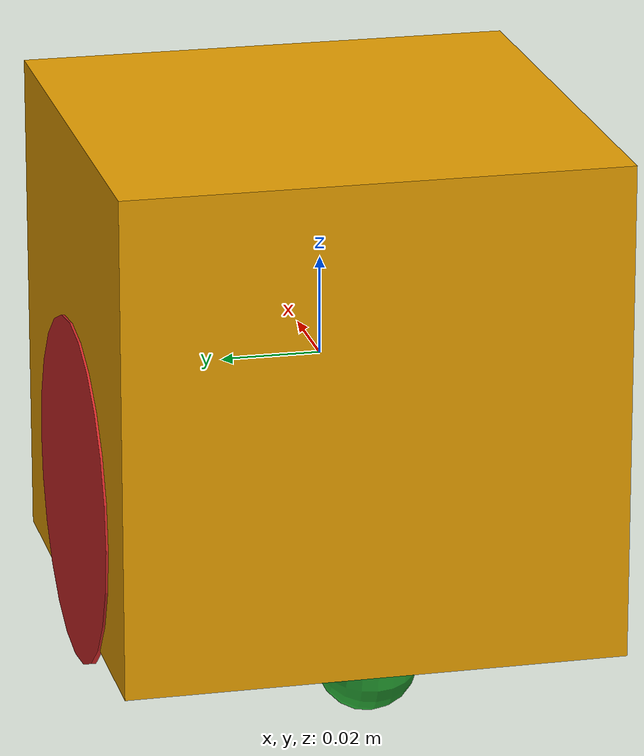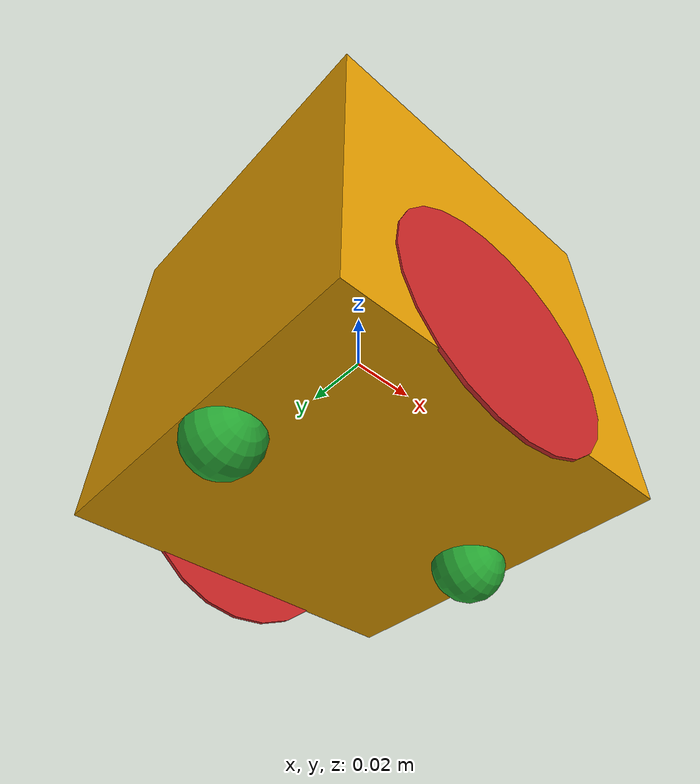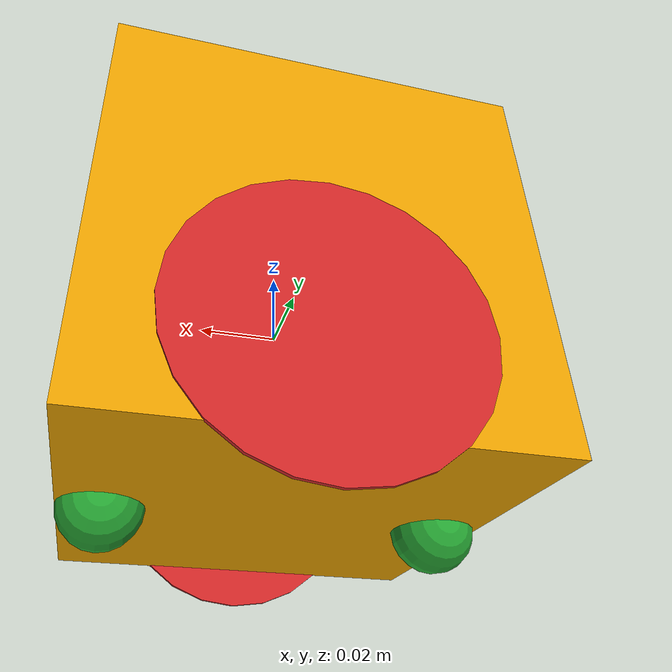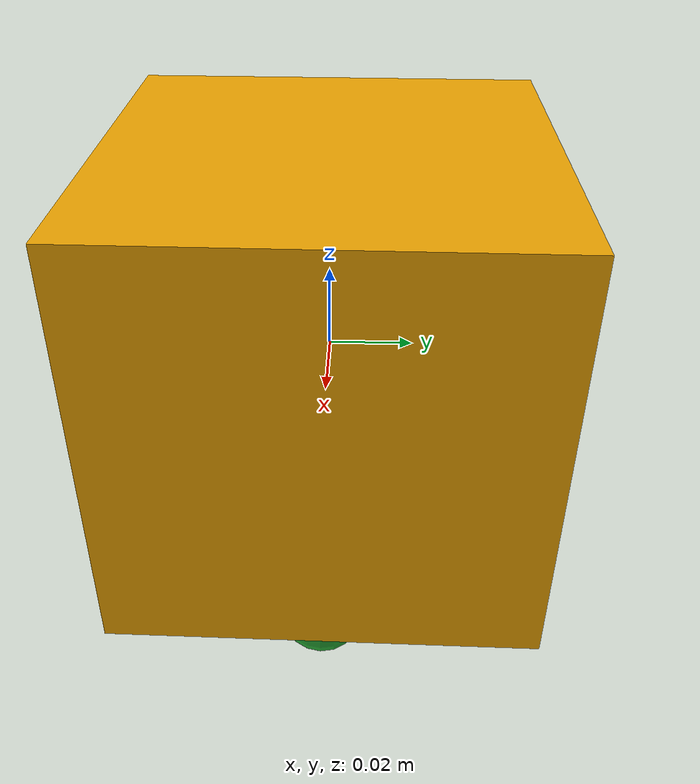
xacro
<?xml version="1.0"?>
<robot xmlns:xacro="http://www.ros.org/wiki/xacro" name="box_bot">

<xacro:property name="robot_name" value="$(arg robot_name)"/>

<xacro:include filename="$(find box_bot_description)/urdf/box_bot.gazebo.xacro" />

<xacro:gazebo_elements />

<!-- XACRO: Properties -->
<xacro:property name="body_width" value="0.1"/>
<xacro:property name="body_length" value="0.1"/>
<xacro:property name="body_height" value="0.1"/>
<xacro:property name="wheel_length" value="0.001"/>
<xacro:property name="wheel_radius" value="0.035"/>

<!-- Body -->
  <link name="chassis">
    <visual>
      <geometry>
        <box size="${body_width} ${body_length} ${body_height}"/>
      </geometry>
    </visual>

    <collision>
      <geometry>
        <box size="${body_width} ${body_length} ${body_height}"/>
      </geometry>
    </collision>

    <inertial>
      <mass value="0.5"/>
      <origin rpy="0 0 0" xyz="0 0 0"/>
      <inertia ixx="0.0008333333333333335" ixy="0" ixz="0" iyy="0.0008333333333333335" iyz="0" izz="0.0008333333333333335"/>
    </inertial>
  </link>

  <!-- XACRO: Wheel macro -->
  <xacro:macro name="wheel" params="wheel_name">
    <link name="${wheel_name}">
        <visual>
            <origin rpy="0 1.5707 1.5707" xyz="0 0 0"/>
            <geometry>
            <cylinder length="${wheel_length}" radius="${wheel_radius}"/>
            </geometry>
            <material name="red"/>
        </visual>

        <collision>
            <origin rpy="0 1.5707 1.5707" xyz="0 0 0"/>
            <geometry>
            <cylinder length="${wheel_length}" radius="${wheel_radius}"/>
            </geometry>
        </collision>

        <inertial>
            <origin rpy="0 1.5707 1.5707" xyz="0 0 0"/>
            <mass value="0.05"/>
            <inertia ixx="1.531666666666667e-05" ixy="0" ixz="0" iyy="1.531666666666667e-05" iyz="0" izz="3.0625000000000006e-05"/>
        </inertial>
    </link>
  </xacro:macro>

  <!-- Wheel Left -->
  <xacro:wheel wheel_name="left_wheel"/>

  <joint name="joint_left_wheel" type="continuous">
    <origin rpy="0 0 0" xyz="0 0.05 -0.025"/>
    <child link="left_wheel"/>
    <parent link="chassis"/>
    <axis rpy="0 0 0" xyz="0 1 0"/>
    <limit effort="10000" velocity="1000"/>
    <joint_properties damping="1.0" friction="1.0"/>
  </joint>

  <!-- Wheel Right -->
  <xacro:wheel wheel_name="right_wheel"/>

  <joint name="joint_right_wheel" type="continuous">
    <origin rpy="0 0 0" xyz="0 -0.05 -0.025"/>
    <child link="right_wheel"/>
    <parent link="chassis"/>
    <axis rpy="0 0 0" xyz="0 1 0"/>
    <limit effort="10000" velocity="1000"/>
    <joint_properties damping="1.0" friction="1.0"/>
  </joint>

  <!-- Caster Wheel Front -->
  <link name="front_yaw_link">
      <visual>
        <origin rpy="0 1.5707 1.5707" xyz="0 0 0"/>
        <geometry>
          <cylinder length="0.001" radius="0.0045000000000000005"/>
        </geometry>
        <material name="blue"/>
      </visual>

      <collision>
        <origin rpy="0 1.5707 1.5707" xyz="0 0 0"/>
        <geometry>
          <cylinder length="0.001" radius="0.0045000000000000005"/>
        </geometry>
      </collision>

      <inertial>
          <origin rpy="0 1.5707 1.5707" xyz="0 0 0"/>
          <mass value="0.001"/>
          <inertia ixx="5.145833333333334e-09" ixy="0" ixz="0" iyy="5.145833333333334e-09" iyz="0" izz="1.0125000000000003e-08"/>
      </inertial>

  </link>

  <joint name="front_yaw_joint" type="continuous">
    <origin rpy="0 0 0" xyz="0.04 0 -0.05" />
    <parent link="chassis" />
    <child link="front_yaw_link" />
    <axis xyz="0 0 1" />
    <limit effort="1000.0" velocity="100.0" />
    <dynamics damping="0.0" friction="0.1"/>
  </joint>

  <link name="front_roll_link">
      <visual>
        <origin rpy="0 1.5707 1.5707" xyz="0 0 0"/>
        <geometry>
          <cylinder length="0.001" radius="0.0045000000000000005"/>
        </geometry>
        <material name="red"/>
      </visual>

      <collision>
        <origin rpy="0 1.5707 1.5707" xyz="0 0 0"/>
        <geometry>
          <cylinder length="0.001" radius="0.0045000000000000005"/>
        </geometry>
      </collision>

      <inertial>
          <origin rpy="0 1.5707 1.5707" xyz="0 0 0"/>
          <mass value="0.001"/>
          <inertia ixx="5.145833333333334e-09" ixy="0" ixz="0" iyy="5.145833333333334e-09" iyz="0" izz="1.0125000000000003e-08"/>
      </inertial>
  </link>

  <joint name="front_roll_joint" type="continuous">
    <origin rpy="0 0 0" xyz="0 0 0" />
    <parent link="front_yaw_link" />
    <child link="front_roll_link" />
    <axis xyz="1 0 0" />
    <limit effort="1000.0" velocity="100.0" />
    <dynamics damping="0.0" friction="0.1"/>
  </joint>

  <link name="front_pitch_link">
    <visual>
      <origin rpy="0 1.5707 1.5707" xyz="0 0 0"/>
      <geometry>
        <sphere radius="0.010"/>
      </geometry>
      <material name="green_dark"/>
    </visual>

    <collision>
      <origin rpy="0 1.5707 1.5707" xyz="0 0 0"/>
      <geometry>
        <sphere radius="0.010"/>
      </geometry>
    </collision>

    <inertial>
        <origin rpy="0 1.5707 1.5707" xyz="0 0 0"/>
        <mass value="0.001"/>
        <inertia ixx="4e-08" ixy="0" ixz="0" iyy="4e-08" iyz="0" izz="4e-08"/>
    </inertial>
  </link>

  <joint name="front_pitch_joint" type="continuous">
    <origin rpy="0 0 0" xyz="0 0 0" />
    <parent link="front_roll_link" />
    <child link="front_pitch_link" />
    <axis xyz="0 1 0" />
    <limit effort="1000.0" velocity="100.0" />
    <dynamics damping="0.0" friction="0.1"/>
  </joint>

<!-- Caster Wheel Back -->
  <link name="back_yaw_link">
    <visual>
        <origin rpy="0 1.5707 1.5707" xyz="0 0 0"/>
        <geometry>
          <cylinder length="0.001" radius="0.0045000000000000005"/>
        </geometry>
        <material name="blue"/>
      </visual>

      <collision>
        <origin rpy="0 1.5707 1.5707" xyz="0 0 0"/>
        <geometry>
          <cylinder length="0.001" radius="0.0045000000000000005"/>
        </geometry>
      </collision>

      <inertial>
          <origin rpy="0 1.5707 1.5707" xyz="0 0 0"/>
          <mass value="0.001"/>
          <inertia ixx="5.145833333333334e-09" ixy="0" ixz="0" iyy="5.145833333333334e-09" iyz="0" izz="1.0125000000000003e-08"/>
      </inertial>
  </link>

  <joint name="back_yaw_joint" type="continuous">
    <origin rpy="0 0 0" xyz="-0.04 0 -0.05" />
    <parent link="chassis" />
    <child link="back_yaw_link" />
    <axis xyz="0 0 1" />
    <limit effort="1000.0" velocity="100.0" />
    <dynamics damping="0.0" friction="0.1"/>
  </joint>

  <link name="back_roll_link">
      <visual>
        <origin rpy="0 1.5707 1.5707" xyz="0 0 0"/>
        <geometry>
          <cylinder length="0.001" radius="0.0045000000000000005"/>
        </geometry>
        <material name="red"/>
      </visual>

      <collision>
        <origin rpy="0 1.5707 1.5707" xyz="0 0 0"/>
        <geometry>
          <cylinder length="0.001" radius="0.0045000000000000005"/>
        </geometry>
      </collision>

      <inertial>
          <origin rpy="0 1.5707 1.5707" xyz="0 0 0"/>
          <mass value="0.001"/>
          <inertia ixx="5.145833333333334e-09" ixy="0" ixz="0" iyy="5.145833333333334e-09" iyz="0" izz="1.0125000000000003e-08"/>
      </inertial>
  </link>

  <joint name="back_roll_joint" type="continuous">
    <origin rpy="0 0 0" xyz="0 0 0" />
    <parent link="back_yaw_link" />
    <child link="back_roll_link" />
    <axis xyz="1 0 0" />
    <limit effort="1000.0" velocity="100.0" />
    <dynamics damping="0.0" friction="0.1"/>
  </joint>

  <link name="back_pitch_link">
    <visual>
      <origin rpy="0 1.5707 1.5707" xyz="0 0 0"/>
      <geometry>
        <sphere radius="0.010"/>
      </geometry>
      <material name="green_light"/>
    </visual>

    <collision>
      <origin rpy="0 1.5707 1.5707" xyz="0 0 0"/>
      <geometry>
        <sphere radius="0.010"/>
      </geometry>
    </collision>

    <inertial>
        <origin rpy="0 1.5707 1.5707" xyz="0 0 0"/>
        <mass value="0.001"/>
        <inertia ixx="4e-08" ixy="0" ixz="0" iyy="4e-08" iyz="0" izz="4e-08"/>
    </inertial>
  </link>

  <joint name="back_pitch_joint" type="continuous">
    <origin rpy="0 0 0" xyz="0 0 0" />
    <parent link="back_roll_link" />
    <child link="back_pitch_link" />
    <axis xyz="0 1 0" />
    <limit effort="1000.0" velocity="100.0" />
    <dynamics damping="0.0" friction="0.1"/>
  </joint>

    <!-- PLUGINS -->

  <!-- JOINT PUBLISHER -->
  <gazebo>
    <plugin name="box_bot_joint_state" filename="libgazebo_ros_joint_state_publisher.so">
      <ros>
        <namespace>/${robot_name}</namespace>
          <remapping>~/out:=joint_states</remapping>
      </ros>
      <update_rate>30</update_rate>

      <joint_name>joint_left_wheel</joint_name>
      <joint_name>joint_right_wheel</joint_name>
      <joint_name>front_yaw_joint</joint_name>
      <joint_name>back_yaw_joint</joint_name>
      <joint_name>front_roll_joint</joint_name>
      <joint_name>back_roll_joint</joint_name>
      <joint_name>front_pitch_joint</joint_name>
      <joint_name>back_pitch_joint</joint_name>

    </plugin>
  </gazebo>

  <!-- Differential drive -->
  <gazebo>
    <plugin filename="libgazebo_ros_diff_drive.so" name="differential_drive_controller">

      <ros>
        <namespace>/${robot_name}</namespace>
          <remapping>/cmd_vel:=cmd_vel</remapping>
      </ros>

      <!-- wheels -->
      <left_joint>joint_left_wheel</left_joint>
      <right_joint>joint_right_wheel</right_joint>

      <!-- kinematics -->
      <wheel_separation>0.1</wheel_separation>
      <wheel_diameter>0.07</wheel_diameter>

      <!-- limits -->
      <max_wheel_torque>1.0</max_wheel_torque>
      <max_wheel_acceleration>2.0</max_wheel_acceleration>

      <!-- output -->
      <publish_odom>true</publish_odom>
      <publish_odom_tf>true</publish_odom_tf>

      <!-- TF frames -->
      <odometry_frame>${robot_name}/odom</odometry_frame>
      <robot_base_frame>${robot_name}/base_link</robot_base_frame>

    </plugin>
  </gazebo>

</robot>
